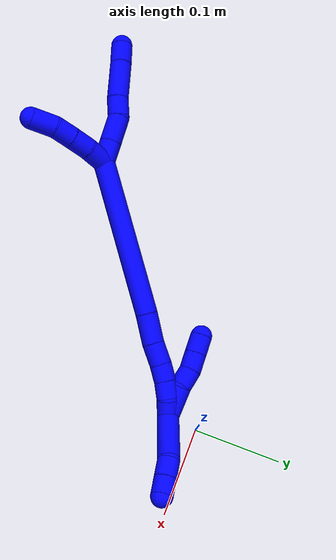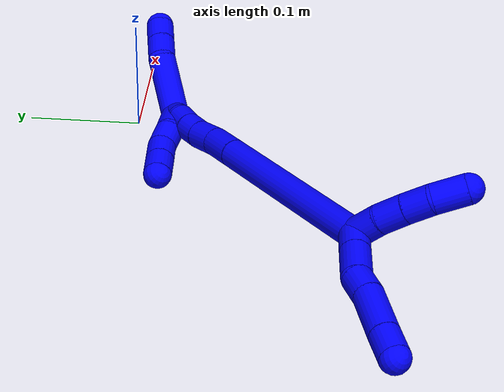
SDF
<sdf version="1.7">
 <world name="default">
  <plugin name="TubeGeneratorPlugin" filename="libtube_generator_plugin.so"/>
  <model name="photoneo_s_sensor">
   <static>1</static>
   <pose>0 0 2 1.57079 1.57079 3.14159</pose>
   <link name="link">
    <inertial><mass>0.1</mass></inertial>
    <sensor name="sensor" type="depth">
     <update_rate>30</update_rate>
     <camera>
      <horizontal_fov>1.22</horizontal_fov>
      <image><width>1920</width><height>1200</height><format>B8G8R8</format></image>
      <clip><near>0.1</near><far>4</far></clip>
      <depth_camera><output>points</output></depth_camera>
     </camera>
     <plugin name="camera_plugin" filename="libgazebo_ros_depth_camera.so">
      <baseline>0.2</baseline>
      <alwaysOn>1</alwaysOn>
      <updateRate>0.0</updateRate>
      <cameraName>camera_ir</cameraName>
      <imageTopicName>/camera/color/image_raw</imageTopicName>
      <cameraInfoTopicName>/camera/color/camera_info</cameraInfoTopicName>
      <depthImageTopicName>/camera/depth/image_raw</depthImageTopicName>
      <depthImageCameraInfoTopicName>/camera/depth/camera_info</depthImageCameraInfoTopicName>
      <pointCloudTopicName>/camera/depth/points</pointCloudTopicName>
      <frameName>fr_optical</frameName>
      <pointCloudCutoff>0.1</pointCloudCutoff>
      <pointCloudCutoffMax>2.0</pointCloudCutoffMax>
      <distortionK1>0</distortionK1>
      <distortionK2>0</distortionK2>
      <distortionK3>0</distortionK3>
      <distortionT1>0</distortionT1>
      <distortionT2>0</distortionT2>
      <CxPrime>0</CxPrime>
      <Cx>0</Cx>
      <Cy>0</Cy>
      <focalLength>0</focalLength>
      <hackBaseline>0</hackBaseline>
     </plugin>
    </sensor>
   </link>
  </model>
  <gravity>0 0 -9.8</gravity>
  <magnetic_field>6e-06 2.3e-05 -4.2e-05</magnetic_field>
  <atmosphere type="adiabatic"/>
  <physics name="default_physics" default="0" type="ode">
   <max_step_size>0.003</max_step_size>
   <real_time_factor>1</real_time_factor>
   <real_time_update_rate>1000</real_time_update_rate>
   <max_contacts>10000</max_contacts>
   <ode>
    <solver>
     <type>quick</type>
     <iters>100</iters>
     <sor>1.3</sor>
     <use_dynamic_moi_rescaling>0</use_dynamic_moi_rescaling>
    </solver>
    <constraints>
     <contact_max_correcting_vel>0</contact_max_correcting_vel>
     <contact_surface_layer>0.001</contact_surface_layer>
     <cfm>0</cfm>
     <erp>0.2</erp>
    </constraints>
   </ode>
  </physics>
  <scene><ambient>0.4 0.4 0.4 1</ambient><background>0.7 0.7 0.7 1</background><shadows>0</shadows></scene>
  <audio><device>default</device></audio>
  <spherical_coordinates>
   <surface_model>EARTH_WGS84</surface_model>
   <latitude_deg>0</latitude_deg>
   <longitude_deg>0</longitude_deg>
   <elevation>0</elevation>
   <heading_deg>0</heading_deg>
  </spherical_coordinates>
  <model name="bin">
   <static>1</static>
   <link name="bottom">
    <collision name="collision-bottom">
     <pose>0 0 -0.01 0 -0 0</pose>
     <geometry><box><size>0.8 0.6 0.02</size></box></geometry>
     <surface>
      <friction><ode><mu>100</mu><mu2>100</mu2></ode></friction>
      <contact><collide_bitmask>65535</collide_bitmask></contact>
     </surface>
    </collision>
   </link>
   <link name="west_wall">
    <collision name="collision-west_wall">
     <pose>-0.41 0 0.1 0 -0 0</pose>
     <geometry><box><size>0.02 0.6 0.2</size></box></geometry>
     <surface>
      <friction><ode><mu>100</mu><mu2>100</mu2></ode></friction>
      <contact><collide_bitmask>65535</collide_bitmask></contact>
     </surface>
    </collision>
   </link>
   <link name="east_wall">
    <collision name="collision-east_wall">
     <pose>0.41 0 0.1 0 -0 0</pose>
     <geometry><box><size>0.02 0.6 0.2</size></box></geometry>
     <surface>
      <friction><ode><mu>100</mu><mu2>100</mu2></ode></friction>
      <contact><collide_bitmask>65535</collide_bitmask></contact>
     </surface>
    </collision>
   </link>
   <link name="south_wall">
    <collision name="collision-south_wall">
     <pose>0 -0.31 0.1 0 -0 0</pose>
     <geometry><box><size>0.8 0.02 0.2</size></box></geometry>
     <surface>
      <friction><ode><mu>100</mu><mu2>100</mu2></ode></friction>
      <contact><collide_bitmask>65535</collide_bitmask></contact>
     </surface>
    </collision>
   </link>
   <link name="north_wall">
    <collision name="collision-north_wall">
     <pose>0 0.31 0.1 0 -0 0</pose>
     <geometry><box><size>0.8 0.02 0.2</size></box></geometry>
     <surface>
      <friction><ode><mu>100</mu><mu2>100</mu2></ode></friction>
      <contact><collide_bitmask>65535</collide_bitmask></contact>
     </surface>
    </collision>
   </link>
  </model>
  <model name="1">
   <static>0</static>
   <link name="1">
    <collision name="collision-cylinder-e_1_2_8">
     <pose>-0.010739 -0.001098 0.005888 0.184371 -1.062 -0.108475</pose>
     <geometry><cylinder><radius>0.0125</radius><length>0.024593</length></cylinder></geometry>
     <surface>
      <friction><ode><mu>1.16</mu><mu2>1.16</mu2><slip1>0</slip1><slip2>0</slip2></ode></friction>
      <contact><ode><kp>1e+06</kp><kd>1</kd><max_vel>0</max_vel><min_depth>0.001</min_depth></ode></contact>
     </surface>
    </collision>
    <visual name="visual-cylinder-e_1_2_8">
     <pose>-0.010739 -0.001098 0.005888 0.184371 -1.062 -0.108475</pose>
     <geometry><cylinder><radius>0.0125</radius><length>0.024593</length></cylinder></geometry>
     <material><ambient>0 0 1 1</ambient></material>
    </visual>
    <collision name="collision-cylinder-e_2_8_9">
     <pose>-0.035746 -0.003697 0.019578 0.190099 -1.06278 -0.111957</pose>
     <geometry><cylinder><radius>0.0125</radius><length>0.03266</length></cylinder></geometry>
     <surface>
      <friction><ode><mu>1.16</mu><mu2>1.16</mu2><slip1>0</slip1><slip2>0</slip2></ode></friction>
      <contact><ode><kp>1e+06</kp><kd>1</kd><max_vel>0</max_vel><min_depth>0.001</min_depth></ode></contact>
     </surface>
    </collision>
    <visual name="visual-cylinder-e_2_8_9">
     <pose>-0.035746 -0.003697 0.019578 0.190099 -1.06278 -0.111957</pose>
     <geometry><cylinder><radius>0.0125</radius><length>0.03266</length></cylinder></geometry>
     <material><ambient>0 0 1 1</ambient></material>
    </visual>
    <collision name="collision-cylinder-e_3_9_10">
     <pose>-0.058078 -0.009337 0.03444 0.530156 -0.777938 -0.22161</pose>
     <geometry><cylinder><radius>0.0125</radius><length>0.022981</length></cylinder></geometry>
     <surface>
      <friction><ode><mu>1.16</mu><mu2>1.16</mu2><slip1>0</slip1><slip2>0</slip2></ode></friction>
      <contact><ode><kp>1e+06</kp><kd>1</kd><max_vel>0</max_vel><min_depth>0.001</min_depth></ode></contact>
     </surface>
    </collision>
    <visual name="visual-cylinder-e_3_9_10">
     <pose>-0.058078 -0.009337 0.03444 0.530156 -0.777938 -0.22161</pose>
     <geometry><cylinder><radius>0.0125</radius><length>0.022981</length></cylinder></geometry>
     <material><ambient>0 0 1 1</ambient></material>
    </visual>
    <collision name="collision-cylinder-e_4_10_11">
     <pose>-0.083933 -0.019908 0.053709 0.484882 -0.911157 -0.241161</pose>
     <geometry><cylinder><radius>0.0125</radius><length>0.04503</length></cylinder></geometry>
     <surface>
      <friction><ode><mu>1.16</mu><mu2>1.16</mu2><slip1>0</slip1><slip2>0</slip2></ode></friction>
      <contact><ode><kp>1e+06</kp><kd>1</kd><max_vel>0</max_vel><min_depth>0.001</min_depth></ode></contact>
     </surface>
    </collision>
    <visual name="visual-cylinder-e_4_10_11">
     <pose>-0.083933 -0.019908 0.053709 0.484882 -0.911157 -0.241161</pose>
     <geometry><cylinder><radius>0.0125</radius><length>0.04503</length></cylinder></geometry>
     <material><ambient>0 0 1 1</ambient></material>
    </visual>
    <collision name="collision-cylinder-e_5_11_6">
     <pose>-0.111373 -0.03035 0.072535 0.54482 -0.894775 -0.2665</pose>
     <geometry><cylinder><radius>0.0125</radius><length>0.024736</length></cylinder></geometry>
     <surface>
      <friction><ode><mu>1.16</mu><mu2>1.16</mu2><slip1>0</slip1><slip2>0</slip2></ode></friction>
      <contact><ode><kp>1e+06</kp><kd>1</kd><max_vel>0</max_vel><min_depth>0.001</min_depth></ode></contact>
     </surface>
    </collision>
    <visual name="visual-cylinder-e_5_11_6">
     <pose>-0.111373 -0.03035 0.072535 0.54482 -0.894775 -0.2665</pose>
     <geometry><cylinder><radius>0.0125</radius><length>0.024736</length></cylinder></geometry>
     <material><ambient>0 0 1 1</ambient></material>
    </visual>
    <collision name="collision-cylinder-e_1_2_12">
     <pose>0.0043 -0.002761 0.01197 0.226656 0.336687 0.038682</pose>
     <geometry><cylinder><radius>0.0125</radius><length>0.02603</length></cylinder></geometry>
     <surface>
      <friction><ode><mu>1.16</mu><mu2>1.16</mu2><slip1>0</slip1><slip2>0</slip2></ode></friction>
      <contact><ode><kp>1e+06</kp><kd>1</kd><max_vel>0</max_vel><min_depth>0.001</min_depth></ode></contact>
     </surface>
    </collision>
    <visual name="visual-cylinder-e_1_2_12">
     <pose>0.0043 -0.002761 0.01197 0.226656 0.336687 0.038682</pose>
     <geometry><cylinder><radius>0.0125</radius><length>0.02603</length></cylinder></geometry>
     <material><ambient>0 0 1 1</ambient></material>
    </visual>
    <collision name="collision-cylinder-e_2_12_13">
     <pose>0.012666 -0.009658 0.033968 0.391298 0.358653 0.07182</pose>
     <geometry><cylinder><radius>0.0125</radius><length>0.023169</length></cylinder></geometry>
     <surface>
      <friction><ode><mu>1.16</mu><mu2>1.16</mu2><slip1>0</slip1><slip2>0</slip2></ode></friction>
      <contact><ode><kp>1e+06</kp><kd>1</kd><max_vel>0</max_vel><min_depth>0.001</min_depth></ode></contact>
     </surface>
    </collision>
    <visual name="visual-cylinder-e_2_12_13">
     <pose>0.012666 -0.009658 0.033968 0.391298 0.358653 0.07182</pose>
     <geometry><cylinder><radius>0.0125</radius><length>0.023169</length></cylinder></geometry>
     <material><ambient>0 0 1 1</ambient></material>
    </visual>
    <collision name="collision-cylinder-e_3_13_14">
     <pose>0.020658 -0.018301 0.053489 0.443111 0.357564 0.081367</pose>
     <geometry><cylinder><radius>0.0125</radius><length>0.022436</length></cylinder></geometry>
     <surface>
      <friction><ode><mu>1.16</mu><mu2>1.16</mu2><slip1>0</slip1><slip2>0</slip2></ode></friction>
      <contact><ode><kp>1e+06</kp><kd>1</kd><max_vel>0</max_vel><min_depth>0.001</min_depth></ode></contact>
     </surface>
    </collision>
    <visual name="visual-cylinder-e_3_13_14">
     <pose>0.020658 -0.018301 0.053489 0.443111 0.357564 0.081367</pose>
     <geometry><cylinder><radius>0.0125</radius><length>0.022436</length></cylinder></geometry>
     <material><ambient>0 0 1 1</ambient></material>
    </visual>
    <collision name="collision-cylinder-e_4_14_5">
     <pose>0.031258 -0.030667 0.072719 0.679201 0.48994 0.17618</pose>
     <geometry><cylinder><radius>0.0125</radius><length>0.028365</length></cylinder></geometry>
     <surface>
      <friction><ode><mu>1.16</mu><mu2>1.16</mu2><slip1>0</slip1><slip2>0</slip2></ode></friction>
      <contact><ode><kp>1e+06</kp><kd>1</kd><max_vel>0</max_vel><min_depth>0.001</min_depth></ode></contact>
     </surface>
    </collision>
    <visual name="visual-cylinder-e_4_14_5">
     <pose>0.031258 -0.030667 0.072719 0.679201 0.48994 0.17618</pose>
     <geometry><cylinder><radius>0.0125</radius><length>0.028365</length></cylinder></geometry>
     <material><ambient>0 0 1 1</ambient></material>
    </visual>
    <collision name="collision-cylinder-e_1_2_15">
     <pose>0.044915 0.037779 -0.068724 -2.63897 0.520123 -1.60655</pose>
     <geometry><cylinder><radius>0.0125</radius><length>0.180749</length></cylinder></geometry>
     <surface>
      <friction><ode><mu>1.16</mu><mu2>1.16</mu2><slip1>0</slip1><slip2>0</slip2></ode></friction>
      <contact><ode><kp>1e+06</kp><kd>1</kd><max_vel>0</max_vel><min_depth>0.001</min_depth></ode></contact>
     </surface>
    </collision>
    <visual name="visual-cylinder-e_1_2_15">
     <pose>0.044915 0.037779 -0.068724 -2.63897 0.520123 -1.60655</pose>
     <geometry><cylinder><radius>0.0125</radius><length>0.180749</length></cylinder></geometry>
     <material><ambient>0 0 1 1</ambient></material>
    </visual>
    <collision name="collision-cylinder-e_2_15_16">
     <pose>0.098496 0.081464 -0.150716 -2.72275 0.537996 -1.82803</pose>
     <geometry><cylinder><radius>0.0125</radius><length>0.033824</length></cylinder></geometry>
     <surface>
      <friction><ode><mu>1.16</mu><mu2>1.16</mu2><slip1>0</slip1><slip2>0</slip2></ode></friction>
      <contact><ode><kp>1e+06</kp><kd>1</kd><max_vel>0</max_vel><min_depth>0.001</min_depth></ode></contact>
     </surface>
    </collision>
    <visual name="visual-cylinder-e_2_15_16">
     <pose>0.098496 0.081464 -0.150716 -2.72275 0.537996 -1.82803</pose>
     <geometry><cylinder><radius>0.0125</radius><length>0.033824</length></cylinder></geometry>
     <material><ambient>0 0 1 1</ambient></material>
    </visual>
    <collision name="collision-cylinder-e_3_16_17">
     <pose>0.112376 0.092562 -0.174268 -2.67414 0.424973 -1.47244</pose>
     <geometry><cylinder><radius>0.0125</radius><length>0.025293</length></cylinder></geometry>
     <surface>
      <friction><ode><mu>1.16</mu><mu2>1.16</mu2><slip1>0</slip1><slip2>0</slip2></ode></friction>
      <contact><ode><kp>1e+06</kp><kd>1</kd><max_vel>0</max_vel><min_depth>0.001</min_depth></ode></contact>
     </surface>
    </collision>
    <visual name="visual-cylinder-e_3_16_17">
     <pose>0.112376 0.092562 -0.174268 -2.67414 0.424973 -1.47244</pose>
     <geometry><cylinder><radius>0.0125</radius><length>0.025293</length></cylinder></geometry>
     <material><ambient>0 0 1 1</ambient></material>
    </visual>
    <collision name="collision-cylinder-e_4_17_18">
     <pose>0.122757 0.101927 -0.192059 -2.63415 0.541715 -1.6392</pose>
     <geometry><cylinder><radius>0.0125</radius><length>0.020043</length></cylinder></geometry>
     <surface>
      <friction><ode><mu>1.16</mu><mu2>1.16</mu2><slip1>0</slip1><slip2>0</slip2></ode></friction>
      <contact><ode><kp>1e+06</kp><kd>1</kd><max_vel>0</max_vel><min_depth>0.001</min_depth></ode></contact>
     </surface>
    </collision>
    <visual name="visual-cylinder-e_4_17_18">
     <pose>0.122757 0.101927 -0.192059 -2.63415 0.541715 -1.6392</pose>
     <geometry><cylinder><radius>0.0125</radius><length>0.020043</length></cylinder></geometry>
     <material><ambient>0 0 1 1</ambient></material>
    </visual>
    <collision name="collision-cylinder-e_5_18_19">
     <pose>0.133948 0.109559 -0.206787 -2.69494 0.644878 -1.94753</pose>
     <geometry><cylinder><radius>0.0125</radius><length>0.020043</length></cylinder></geometry>
     <surface>
      <friction><ode><mu>1.16</mu><mu2>1.16</mu2><slip1>0</slip1><slip2>0</slip2></ode></friction>
      <contact><ode><kp>1e+06</kp><kd>1</kd><max_vel>0</max_vel><min_depth>0.001</min_depth></ode></contact>
     </surface>
    </collision>
    <visual name="visual-cylinder-e_5_18_19">
     <pose>0.133948 0.109559 -0.206787 -2.69494 0.644878 -1.94753</pose>
     <geometry><cylinder><radius>0.0125</radius><length>0.020043</length></cylinder></geometry>
     <material><ambient>0 0 1 1</ambient></material>
    </visual>
    <collision name="collision-cylinder-e_6_19_1">
     <pose>0.145236 0.113667 -0.222516 -3.06554 0.552866 -2.87497</pose>
     <geometry><cylinder><radius>0.0125</radius><length>0.020048</length></cylinder></geometry>
     <surface>
      <friction><ode><mu>1.16</mu><mu2>1.16</mu2><slip1>0</slip1><slip2>0</slip2></ode></friction>
      <contact><ode><kp>1e+06</kp><kd>1</kd><max_vel>0</max_vel><min_depth>0.001</min_depth></ode></contact>
     </surface>
    </collision>
    <visual name="visual-cylinder-e_6_19_1">
     <pose>0.145236 0.113667 -0.222516 -3.06554 0.552866 -2.87497</pose>
     <geometry><cylinder><radius>0.0125</radius><length>0.020048</length></cylinder></geometry>
     <material><ambient>0 0 1 1</ambient></material>
    </visual>
    <collision name="collision-cylinder-e_1_1_20">
     <pose>0.135175 0.11576 -0.22171 -0.153966 -1.01951 0.086189</pose>
     <geometry><cylinder><radius>0.0125</radius><length>0.035981</length></cylinder></geometry>
     <surface>
      <friction><ode><mu>1.16</mu><mu2>1.16</mu2><slip1>0</slip1><slip2>0</slip2></ode></friction>
      <contact><ode><kp>1e+06</kp><kd>1</kd><max_vel>0</max_vel><min_depth>0.001</min_depth></ode></contact>
     </surface>
    </collision>
    <visual name="visual-cylinder-e_1_1_20">
     <pose>0.135175 0.11576 -0.22171 -0.153966 -1.01951 0.086189</pose>
     <geometry><cylinder><radius>0.0125</radius><length>0.035981</length></cylinder></geometry>
     <material><ambient>0 0 1 1</ambient></material>
    </visual>
    <collision name="collision-cylinder-e_2_20_21">
     <pose>0.10937 0.117605 -0.209889 -0.158126 -1.33293 0.124468</pose>
     <geometry><cylinder><radius>0.0125</radius><length>0.021566</length></cylinder></geometry>
     <surface>
      <friction><ode><mu>1.16</mu><mu2>1.16</mu2><slip1>0</slip1><slip2>0</slip2></ode></friction>
      <contact><ode><kp>1e+06</kp><kd>1</kd><max_vel>0</max_vel><min_depth>0.001</min_depth></ode></contact>
     </surface>
    </collision>
    <visual name="visual-cylinder-e_2_20_21">
     <pose>0.10937 0.117605 -0.209889 -0.158126 -1.33293 0.124468</pose>
     <geometry><cylinder><radius>0.0125</radius><length>0.021566</length></cylinder></geometry>
     <material><ambient>0 0 1 1</ambient></material>
    </visual>
    <collision name="collision-cylinder-e_3_21_22">
     <pose>0.089601 0.11711 -0.202864 0.195658 -1.11071 -0.121644</pose>
     <geometry><cylinder><radius>0.0125</radius><length>0.020736</length></cylinder></geometry>
     <surface>
      <friction><ode><mu>1.16</mu><mu2>1.16</mu2><slip1>0</slip1><slip2>0</slip2></ode></friction>
      <contact><ode><kp>1e+06</kp><kd>1</kd><max_vel>0</max_vel><min_depth>0.001</min_depth></ode></contact>
     </surface>
    </collision>
    <visual name="visual-cylinder-e_3_21_22">
     <pose>0.089601 0.11711 -0.202864 0.195658 -1.11071 -0.121644</pose>
     <geometry><cylinder><radius>0.0125</radius><length>0.020736</length></cylinder></geometry>
     <material><ambient>0 0 1 1</ambient></material>
    </visual>
    <collision name="collision-cylinder-e_4_22_4">
     <pose>0.070564 0.115334 -0.193644 0.185202 -1.11431 -0.115582</pose>
     <geometry><cylinder><radius>0.0125</radius><length>0.021717</length></cylinder></geometry>
     <surface>
      <friction><ode><mu>1.16</mu><mu2>1.16</mu2><slip1>0</slip1><slip2>0</slip2></ode></friction>
      <contact><ode><kp>1e+06</kp><kd>1</kd><max_vel>0</max_vel><min_depth>0.001</min_depth></ode></contact>
     </surface>
    </collision>
    <visual name="visual-cylinder-e_4_22_4">
     <pose>0.070564 0.115334 -0.193644 0.185202 -1.11431 -0.115582</pose>
     <geometry><cylinder><radius>0.0125</radius><length>0.021717</length></cylinder></geometry>
     <material><ambient>0 0 1 1</ambient></material>
    </visual>
    <collision name="collision-cylinder-e_1_1_23">
     <pose>0.173894 0.131717 -0.23392 -1.73584 0.924674 -1.06345</pose>
     <geometry><cylinder><radius>0.0125</radius><length>0.058601</length></cylinder></geometry>
     <surface>
      <friction><ode><mu>1.16</mu><mu2>1.16</mu2><slip1>0</slip1><slip2>0</slip2></ode></friction>
      <contact><ode><kp>1e+06</kp><kd>1</kd><max_vel>0</max_vel><min_depth>0.001</min_depth></ode></contact>
     </surface>
    </collision>
    <visual name="visual-cylinder-e_1_1_23">
     <pose>0.173894 0.131717 -0.23392 -1.73584 0.924674 -1.06345</pose>
     <geometry><cylinder><radius>0.0125</radius><length>0.058601</length></cylinder></geometry>
     <material><ambient>0 0 1 1</ambient></material>
    </visual>
    <collision name="collision-cylinder-e_2_23_24">
     <pose>0.206921 0.152779 -0.239668 -2.23218 1.12199 -1.81917</pose>
     <geometry><cylinder><radius>0.0125</radius><length>0.021383</length></cylinder></geometry>
     <surface>
      <friction><ode><mu>1.16</mu><mu2>1.16</mu2><slip1>0</slip1><slip2>0</slip2></ode></friction>
      <contact><ode><kp>1e+06</kp><kd>1</kd><max_vel>0</max_vel><min_depth>0.001</min_depth></ode></contact>
     </surface>
    </collision>
    <visual name="visual-cylinder-e_2_23_24">
     <pose>0.206921 0.152779 -0.239668 -2.23218 1.12199 -1.81917</pose>
     <geometry><cylinder><radius>0.0125</radius><length>0.021383</length></cylinder></geometry>
     <material><ambient>0 0 1 1</ambient></material>
    </visual>
    <collision name="collision-cylinder-e_3_24_3">
     <pose>0.22557 0.159852 -0.245207 -2.23846 1.1218 -1.82669</pose>
     <geometry><cylinder><radius>0.0125</radius><length>0.020016</length></cylinder></geometry>
     <surface>
      <friction><ode><mu>1.16</mu><mu2>1.16</mu2><slip1>0</slip1><slip2>0</slip2></ode></friction>
      <contact><ode><kp>1e+06</kp><kd>1</kd><max_vel>0</max_vel><min_depth>0.001</min_depth></ode></contact>
     </surface>
    </collision>
    <visual name="visual-cylinder-e_3_24_3">
     <pose>0.22557 0.159852 -0.245207 -2.23846 1.1218 -1.82669</pose>
     <geometry><cylinder><radius>0.0125</radius><length>0.020016</length></cylinder></geometry>
     <material><ambient>0 0 1 1</ambient></material>
    </visual>
    <collision name="collision-sphere-3">
     <pose>0.234586 0.163263 -0.247897 0 -0 0</pose>
     <geometry><sphere><radius>0.0125</radius></sphere></geometry>
     <surface>
      <friction><ode><mu>1.16</mu><mu2>1.16</mu2><slip1>0</slip1><slip2>0</slip2></ode></friction>
      <contact><ode><kp>1e+06</kp><kd>1</kd><max_vel>0</max_vel><min_depth>0.001</min_depth></ode></contact>
     </surface>
    </collision>
    <visual name="visual-sphere-3">
     <pose>0.234586 0.163263 -0.247897 0 -0 0</pose>
     <geometry><sphere><radius>0.0125</radius></sphere></geometry>
     <material><ambient>0 0 1 1</ambient></material>
    </visual>
    <collision name="collision-sphere-24">
     <pose>0.216554 0.15644 -0.242517 0 -0 0</pose>
     <geometry><sphere><radius>0.0125</radius></sphere></geometry>
     <surface>
      <friction><ode><mu>1.16</mu><mu2>1.16</mu2><slip1>0</slip1><slip2>0</slip2></ode></friction>
      <contact><ode><kp>1e+06</kp><kd>1</kd><max_vel>0</max_vel><min_depth>0.001</min_depth></ode></contact>
     </surface>
    </collision>
    <visual name="visual-sphere-24">
     <pose>0.216554 0.15644 -0.242517 0 -0 0</pose>
     <geometry><sphere><radius>0.0125</radius></sphere></geometry>
     <material><ambient>0 0 1 1</ambient></material>
    </visual>
    <collision name="collision-sphere-23">
     <pose>0.197289 0.149119 -0.236819 0 -0 0</pose>
     <geometry><sphere><radius>0.0125</radius></sphere></geometry>
     <surface>
      <friction><ode><mu>1.16</mu><mu2>1.16</mu2><slip1>0</slip1><slip2>0</slip2></ode></friction>
      <contact><ode><kp>1e+06</kp><kd>1</kd><max_vel>0</max_vel><min_depth>0.001</min_depth></ode></contact>
     </surface>
    </collision>
    <visual name="visual-sphere-23">
     <pose>0.197289 0.149119 -0.236819 0 -0 0</pose>
     <geometry><sphere><radius>0.0125</radius></sphere></geometry>
     <material><ambient>0 0 1 1</ambient></material>
    </visual>
    <collision name="collision-sphere-4">
     <pose>0.060818 0.114452 -0.188939 0 -0 0</pose>
     <geometry><sphere><radius>0.0125</radius></sphere></geometry>
     <surface>
      <friction><ode><mu>1.16</mu><mu2>1.16</mu2><slip1>0</slip1><slip2>0</slip2></ode></friction>
      <contact><ode><kp>1e+06</kp><kd>1</kd><max_vel>0</max_vel><min_depth>0.001</min_depth></ode></contact>
     </surface>
    </collision>
    <visual name="visual-sphere-4">
     <pose>0.060818 0.114452 -0.188939 0 -0 0</pose>
     <geometry><sphere><radius>0.0125</radius></sphere></geometry>
     <material><ambient>0 0 1 1</ambient></material>
    </visual>
    <collision name="collision-sphere-22">
     <pose>0.080311 0.116215 -0.198348 0 -0 0</pose>
     <geometry><sphere><radius>0.0125</radius></sphere></geometry>
     <surface>
      <friction><ode><mu>1.16</mu><mu2>1.16</mu2><slip1>0</slip1><slip2>0</slip2></ode></friction>
      <contact><ode><kp>1e+06</kp><kd>1</kd><max_vel>0</max_vel><min_depth>0.001</min_depth></ode></contact>
     </surface>
    </collision>
    <visual name="visual-sphere-22">
     <pose>0.080311 0.116215 -0.198348 0 -0 0</pose>
     <geometry><sphere><radius>0.0125</radius></sphere></geometry>
     <material><ambient>0 0 1 1</ambient></material>
    </visual>
    <collision name="collision-sphere-21">
     <pose>0.098891 0.118005 -0.20738 0 -0 0</pose>
     <geometry><sphere><radius>0.0125</radius></sphere></geometry>
     <surface>
      <friction><ode><mu>1.16</mu><mu2>1.16</mu2><slip1>0</slip1><slip2>0</slip2></ode></friction>
      <contact><ode><kp>1e+06</kp><kd>1</kd><max_vel>0</max_vel><min_depth>0.001</min_depth></ode></contact>
     </surface>
    </collision>
    <visual name="visual-sphere-21">
     <pose>0.098891 0.118005 -0.20738 0 -0 0</pose>
     <geometry><sphere><radius>0.0125</radius></sphere></geometry>
     <material><ambient>0 0 1 1</ambient></material>
    </visual>
    <collision name="collision-sphere-20">
     <pose>0.119849 0.117205 -0.212398 0 -0 0</pose>
     <geometry><sphere><radius>0.0125</radius></sphere></geometry>
     <surface>
      <friction><ode><mu>1.16</mu><mu2>1.16</mu2><slip1>0</slip1><slip2>0</slip2></ode></friction>
      <contact><ode><kp>1e+06</kp><kd>1</kd><max_vel>0</max_vel><min_depth>0.001</min_depth></ode></contact>
     </surface>
    </collision>
    <visual name="visual-sphere-20">
     <pose>0.119849 0.117205 -0.212398 0 -0 0</pose>
     <geometry><sphere><radius>0.0125</radius></sphere></geometry>
     <material><ambient>0 0 1 1</ambient></material>
    </visual>
    <collision name="collision-sphere-6">
     <pose>-0.121021 -0.03436 0.079153 0 -0 0</pose>
     <geometry><sphere><radius>0.0125</radius></sphere></geometry>
     <surface>
      <friction><ode><mu>1.16</mu><mu2>1.16</mu2><slip1>0</slip1><slip2>0</slip2></ode></friction>
      <contact><ode><kp>1e+06</kp><kd>1</kd><max_vel>0</max_vel><min_depth>0.001</min_depth></ode></contact>
     </surface>
    </collision>
    <visual name="visual-sphere-6">
     <pose>-0.121021 -0.03436 0.079153 0 -0 0</pose>
     <geometry><sphere><radius>0.0125</radius></sphere></geometry>
     <material><ambient>0 0 1 1</ambient></material>
    </visual>
    <collision name="collision-sphere-11">
     <pose>-0.101725 -0.026339 0.065917 0 -0 0</pose>
     <geometry><sphere><radius>0.0125</radius></sphere></geometry>
     <surface>
      <friction><ode><mu>1.16</mu><mu2>1.16</mu2><slip1>0</slip1><slip2>0</slip2></ode></friction>
      <contact><ode><kp>1e+06</kp><kd>1</kd><max_vel>0</max_vel><min_depth>0.001</min_depth></ode></contact>
     </surface>
    </collision>
    <visual name="visual-sphere-11">
     <pose>-0.101725 -0.026339 0.065917 0 -0 0</pose>
     <geometry><sphere><radius>0.0125</radius></sphere></geometry>
     <material><ambient>0 0 1 1</ambient></material>
    </visual>
    <collision name="collision-sphere-10">
     <pose>-0.066142 -0.013477 0.041502 0 -0 0</pose>
     <geometry><sphere><radius>0.0125</radius></sphere></geometry>
     <surface>
      <friction><ode><mu>1.16</mu><mu2>1.16</mu2><slip1>0</slip1><slip2>0</slip2></ode></friction>
      <contact><ode><kp>1e+06</kp><kd>1</kd><max_vel>0</max_vel><min_depth>0.001</min_depth></ode></contact>
     </surface>
    </collision>
    <visual name="visual-sphere-10">
     <pose>-0.066142 -0.013477 0.041502 0 -0 0</pose>
     <geometry><sphere><radius>0.0125</radius></sphere></geometry>
     <material><ambient>0 0 1 1</ambient></material>
    </visual>
    <collision name="collision-sphere-9">
     <pose>-0.050013 -0.005198 0.027378 0 -0 0</pose>
     <geometry><sphere><radius>0.0125</radius></sphere></geometry>
     <surface>
      <friction><ode><mu>1.16</mu><mu2>1.16</mu2><slip1>0</slip1><slip2>0</slip2></ode></friction>
      <contact><ode><kp>1e+06</kp><kd>1</kd><max_vel>0</max_vel><min_depth>0.001</min_depth></ode></contact>
     </surface>
    </collision>
    <visual name="visual-sphere-9">
     <pose>-0.050013 -0.005198 0.027378 0 -0 0</pose>
     <geometry><sphere><radius>0.0125</radius></sphere></geometry>
     <material><ambient>0 0 1 1</ambient></material>
    </visual>
    <collision name="collision-sphere-2">
     <geometry><sphere><radius>0.0125</radius></sphere></geometry>
     <surface>
      <friction><ode><mu>1.16</mu><mu2>1.16</mu2><slip1>0</slip1><slip2>0</slip2></ode></friction>
      <contact><ode><kp>1e+06</kp><kd>1</kd><max_vel>0</max_vel><min_depth>0.001</min_depth></ode></contact>
     </surface>
    </collision>
    <visual name="visual-sphere-2">
     <geometry><sphere><radius>0.0125</radius></sphere></geometry>
     <material><ambient>0 0 1 1</ambient></material>
    </visual>
    <collision name="collision-sphere-19">
     <pose>0.139972 0.113018 -0.21401 0 -0 0</pose>
     <geometry><sphere><radius>0.0125</radius></sphere></geometry>
     <surface>
      <friction><ode><mu>1.16</mu><mu2>1.16</mu2><slip1>0</slip1><slip2>0</slip2></ode></friction>
      <contact><ode><kp>1e+06</kp><kd>1</kd><max_vel>0</max_vel><min_depth>0.001</min_depth></ode></contact>
     </surface>
    </collision>
    <visual name="visual-sphere-19">
     <pose>0.139972 0.113018 -0.21401 0 -0 0</pose>
     <geometry><sphere><radius>0.0125</radius></sphere></geometry>
     <material><ambient>0 0 1 1</ambient></material>
    </visual>
    <collision name="collision-sphere-8">
     <pose>-0.021478 -0.002196 0.011777 0 -0 0</pose>
     <geometry><sphere><radius>0.0125</radius></sphere></geometry>
     <surface>
      <friction><ode><mu>1.16</mu><mu2>1.16</mu2><slip1>0</slip1><slip2>0</slip2></ode></friction>
      <contact><ode><kp>1e+06</kp><kd>1</kd><max_vel>0</max_vel><min_depth>0.001</min_depth></ode></contact>
     </surface>
    </collision>
    <visual name="visual-sphere-8">
     <pose>-0.021478 -0.002196 0.011777 0 -0 0</pose>
     <geometry><sphere><radius>0.0125</radius></sphere></geometry>
     <material><ambient>0 0 1 1</ambient></material>
    </visual>
    <collision name="collision-sphere-12">
     <pose>0.008599 -0.005521 0.023941 0 -0 0</pose>
     <geometry><sphere><radius>0.0125</radius></sphere></geometry>
     <surface>
      <friction><ode><mu>1.16</mu><mu2>1.16</mu2><slip1>0</slip1><slip2>0</slip2></ode></friction>
      <contact><ode><kp>1e+06</kp><kd>1</kd><max_vel>0</max_vel><min_depth>0.001</min_depth></ode></contact>
     </surface>
    </collision>
    <visual name="visual-sphere-12">
     <pose>0.008599 -0.005521 0.023941 0 -0 0</pose>
     <geometry><sphere><radius>0.0125</radius></sphere></geometry>
     <material><ambient>0 0 1 1</ambient></material>
    </visual>
    <collision name="collision-sphere-13">
     <pose>0.016732 -0.013795 0.043995 0 -0 0</pose>
     <geometry><sphere><radius>0.0125</radius></sphere></geometry>
     <surface>
      <friction><ode><mu>1.16</mu><mu2>1.16</mu2><slip1>0</slip1><slip2>0</slip2></ode></friction>
      <contact><ode><kp>1e+06</kp><kd>1</kd><max_vel>0</max_vel><min_depth>0.001</min_depth></ode></contact>
     </surface>
    </collision>
    <visual name="visual-sphere-13">
     <pose>0.016732 -0.013795 0.043995 0 -0 0</pose>
     <geometry><sphere><radius>0.0125</radius></sphere></geometry>
     <material><ambient>0 0 1 1</ambient></material>
    </visual>
    <collision name="collision-sphere-14">
     <pose>0.024584 -0.022806 0.062982 0 -0 0</pose>
     <geometry><sphere><radius>0.0125</radius></sphere></geometry>
     <surface>
      <friction><ode><mu>1.16</mu><mu2>1.16</mu2><slip1>0</slip1><slip2>0</slip2></ode></friction>
      <contact><ode><kp>1e+06</kp><kd>1</kd><max_vel>0</max_vel><min_depth>0.001</min_depth></ode></contact>
     </surface>
    </collision>
    <visual name="visual-sphere-14">
     <pose>0.024584 -0.022806 0.062982 0 -0 0</pose>
     <geometry><sphere><radius>0.0125</radius></sphere></geometry>
     <material><ambient>0 0 1 1</ambient></material>
    </visual>
    <collision name="collision-sphere-5">
     <pose>0.037932 -0.038528 0.082456 0 -0 0</pose>
     <geometry><sphere><radius>0.0125</radius></sphere></geometry>
     <surface>
      <friction><ode><mu>1.16</mu><mu2>1.16</mu2><slip1>0</slip1><slip2>0</slip2></ode></friction>
      <contact><ode><kp>1e+06</kp><kd>1</kd><max_vel>0</max_vel><min_depth>0.001</min_depth></ode></contact>
     </surface>
    </collision>
    <visual name="visual-sphere-5">
     <pose>0.037932 -0.038528 0.082456 0 -0 0</pose>
     <geometry><sphere><radius>0.0125</radius></sphere></geometry>
     <material><ambient>0 0 1 1</ambient></material>
    </visual>
    <collision name="collision-sphere-15">
     <pose>0.08983 0.075558 -0.137448 0 -0 0</pose>
     <geometry><sphere><radius>0.0125</radius></sphere></geometry>
     <surface>
      <friction><ode><mu>1.16</mu><mu2>1.16</mu2><slip1>0</slip1><slip2>0</slip2></ode></friction>
      <contact><ode><kp>1e+06</kp><kd>1</kd><max_vel>0</max_vel><min_depth>0.001</min_depth></ode></contact>
     </surface>
    </collision>
    <visual name="visual-sphere-15">
     <pose>0.08983 0.075558 -0.137448 0 -0 0</pose>
     <geometry><sphere><radius>0.0125</radius></sphere></geometry>
     <material><ambient>0 0 1 1</ambient></material>
    </visual>
    <collision name="collision-sphere-16">
     <pose>0.107162 0.087371 -0.163983 0 -0 0</pose>
     <geometry><sphere><radius>0.0125</radius></sphere></geometry>
     <surface>
      <friction><ode><mu>1.16</mu><mu2>1.16</mu2><slip1>0</slip1><slip2>0</slip2></ode></friction>
      <contact><ode><kp>1e+06</kp><kd>1</kd><max_vel>0</max_vel><min_depth>0.001</min_depth></ode></contact>
     </surface>
    </collision>
    <visual name="visual-sphere-16">
     <pose>0.107162 0.087371 -0.163983 0 -0 0</pose>
     <geometry><sphere><radius>0.0125</radius></sphere></geometry>
     <material><ambient>0 0 1 1</ambient></material>
    </visual>
    <collision name="collision-sphere-17">
     <pose>0.11759 0.097754 -0.184554 0 -0 0</pose>
     <geometry><sphere><radius>0.0125</radius></sphere></geometry>
     <surface>
      <friction><ode><mu>1.16</mu><mu2>1.16</mu2><slip1>0</slip1><slip2>0</slip2></ode></friction>
      <contact><ode><kp>1e+06</kp><kd>1</kd><max_vel>0</max_vel><min_depth>0.001</min_depth></ode></contact>
     </surface>
    </collision>
    <visual name="visual-sphere-17">
     <pose>0.11759 0.097754 -0.184554 0 -0 0</pose>
     <geometry><sphere><radius>0.0125</radius></sphere></geometry>
     <material><ambient>0 0 1 1</ambient></material>
    </visual>
    <collision name="collision-sphere-18">
     <pose>0.127924 0.106099 -0.199563 0 -0 0</pose>
     <geometry><sphere><radius>0.0125</radius></sphere></geometry>
     <surface>
      <friction><ode><mu>1.16</mu><mu2>1.16</mu2><slip1>0</slip1><slip2>0</slip2></ode></friction>
      <contact><ode><kp>1e+06</kp><kd>1</kd><max_vel>0</max_vel><min_depth>0.001</min_depth></ode></contact>
     </surface>
    </collision>
    <visual name="visual-sphere-18">
     <pose>0.127924 0.106099 -0.199563 0 -0 0</pose>
     <geometry><sphere><radius>0.0125</radius></sphere></geometry>
     <material><ambient>0 0 1 1</ambient></material>
    </visual>
    <collision name="collision-sphere-1">
     <pose>0.1505 0.114315 -0.231022 0 -0 0</pose>
     <geometry><sphere><radius>0.0125</radius></sphere></geometry>
     <surface>
      <friction><ode><mu>1.16</mu><mu2>1.16</mu2><slip1>0</slip1><slip2>0</slip2></ode></friction>
      <contact><ode><kp>1e+06</kp><kd>1</kd><max_vel>0</max_vel><min_depth>0.001</min_depth></ode></contact>
     </surface>
    </collision>
    <visual name="visual-sphere-1">
     <pose>0.1505 0.114315 -0.231022 0 -0 0</pose>
     <geometry><sphere><radius>0.0125</radius></sphere></geometry>
     <material><ambient>0 0 1 1</ambient></material>
    </visual>
    <inertial>
     <pose>0.059396 0.054236 -0.091852 0 -0 0</pose>
     <mass>0.75</mass>
     <inertia>
      <ixx>-0.000438</ixx>
      <ixy>0</ixy>
      <ixz>0</ixz>
      <iyy>-0.000255</iyy>
      <iyz>0</iyz>
      <izz>-0.00047</izz>
     </inertia>
    </inertial>
   </link>
   <pose>-0.243903 -0.203603 0.062134 0.684496 -0.344016 -0.310067</pose>
  </model>
 </world>
</sdf>
